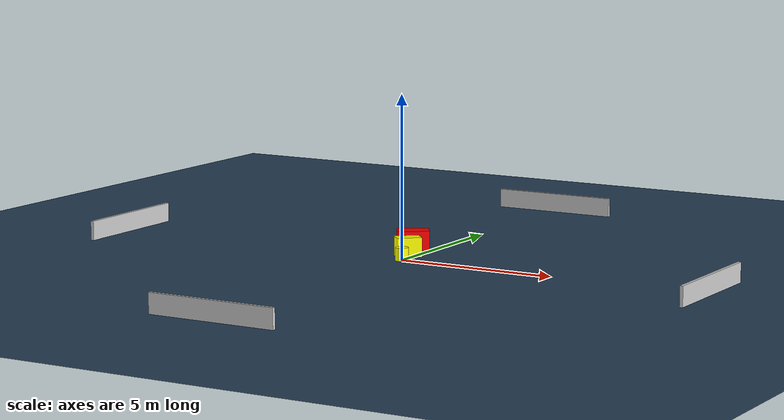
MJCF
<?xml version="1.0" ?>
<mujoco model="generated_environment">
  <option timestep="0.01" integrator="RK4" cone="elliptic"/>
  <default>
    <geom density="1"/>
  </default>
  <asset>
    <texture builtin="gradient" height="3072" name="skybox" rgb1="0.3 0.5 0.7" rgb2="0 0 0" type="skybox" width="512"/>
    <texture builtin="checker" height="300" name="groundplane" rgb1="0.2 0.3 0.4" rgb2="0.1 0.2 0.3" type="2d" width="300"/>
    <material name="groundplane" reflectance="0.2" texrepeat="5 5" texture="groundplane"/>
  </asset>
  <worldbody>
    <light dir="0 0 -1" directional="true" pos="0 0 1.5"/>
    <geom condim="3" friction="0.5 0.005 0.001" material="groundplane" name="floor" pos="0 0 0" size="0 0 0.05" type="plane"/>
    <body name="walls">
      <geom name="wall_1" condim="4" pos="-10.0 0.0 0.3" rgba="0.800000011920929 0.800000011920929 0.800000011920929 1.0" size="0.05 2.0 0.3" type="box"/>
      <geom name="wall_2" condim="4" pos="10.0 0.0 0.3" rgba="0.800000011920929 0.800000011920929 0.800000011920929 1.0" size="0.05 2.0 0.3" type="box"/>
      <geom name="wall_3" condim="4" pos="0.0 -10.0 0.3" rgba="0.800000011920929 0.800000011920929 0.800000011920929 1.0" size="2.0 0.05 0.3" type="box"/>
      <geom name="wall_4" condim="4" pos="0.0 10.0 0.3" rgba="0.800000011920929 0.800000011920929 0.800000011920929 1.0" size="2.0 0.05 0.3" type="box"/>
    </body>
    <body name="robot">
      <joint name="joint_x" type="slide" pos="0 0 0" axis="1 0 0"/>
      <joint name="joint_y" type="slide" pos="0 0 0" axis="0 1 0"/>
      <geom name="robot" type="cylinder" pos="0.0 0.0 0.2" size="0.2 0.2 0.0" mass="5.0" friction="1.0 0.005 0.0001" condim="4" rgba="1.0 1.0 0.0 1.0"/>
    </body>
    <body name="obstacle_1_movable">
      <geom name="obstacle_1_movable" condim="4" pos="-0.17371102396435992 0.6615180800478097 0.3" euler="0 0 223.20966552283812" friction="0.0 0.005 0.001" rgba="1.0 1.0 0.0 1.0" size="0.3800097189611181 0.22631781946959748 0.3" type="box" mass="0.1"/>
      <joint type="free"/>
    </body>
    <body name="obstacle_2_static">
      <geom name="obstacle_2_static" condim="4" pos="-0.6304249095991596 1.7567538951022772 0.3" euler="0 0 33.76234074846265" friction="0.0 0.005 0.001" rgba="1.0 0.0 0.0 1.0" size="0.4888705628037178 0.28564530929648985 0.3" type="box"/>
    </body>
  </worldbody>
  <actuator>
    <motor name="actuator_x" joint="joint_x" gear="1" ctrlrange="-1 1"/>
    <motor name="actuator_y" joint="joint_y" gear="1" ctrlrange="-1 1"/>
  </actuator>
</mujoco>
